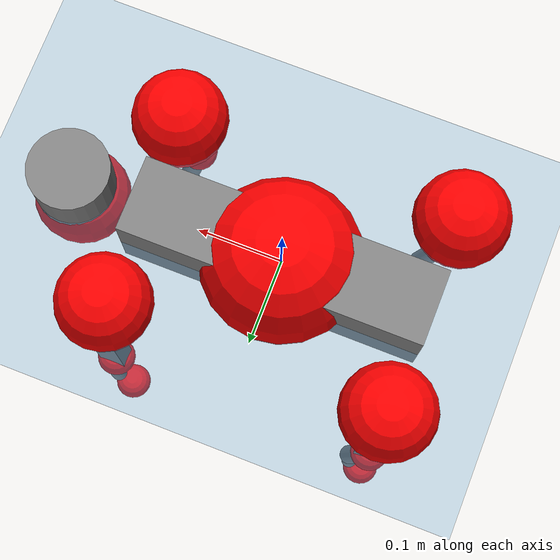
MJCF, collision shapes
<mujoco model="go2">
  <compiler angle="radian" assetdir="assets" balanceinertia="true" inertiafromgeom="false"/>

  <option timestep="0.005" density="1.2" viscosity="2e-05"/>

  <size nkey="1"/>

  <visual>
    <quality shadowsize="8192"/>
    <map shadowclip="0.5"/>
  </visual>

  <default>
    <default class="/">
      <geom contype="0" conaffinity="0" group="1" solref="-1000 -80"/>
      <site size="0.01 0.005 0.005" group="5"/>
      <general forcelimited="true" biastype="affine" gainprm="20" biasprm="0 -20 -0.5"/>
      <default class="go2">
        <joint armature="0.01" damping="0.01" frictionloss="0.2"/>
        <geom condim="1" margin="0.001"/>
        <default class="visual">
          <geom type="mesh" group="2"/>
        </default>
        <default class="collision">
          <geom group="3"/>
          <default class="foot">
            <geom size="0.022 0 0" condim="6" priority="1" friction="0.8 0.02 0.01" solimp="0.015 1 0.022"/>
          </default>
        </default>
        <default class="reward_collision_sphere">
          <geom group="5" rgba="1 0 0 1"/>
        </default>
      </default>
    </default>
  </default>

  <asset>
    <texture type="skybox" colorspace="auto" name="//unnamed_texture_0" builtin="gradient" rgb1="0.95 0.95 0.95" rgb2="0.95 0.95 0.95" width="100" height="600"/>
    <texture type="2d" colorspace="auto" name="texplane" builtin="checker" rgb1="0.345 0.575 0.748" rgb2="0.345 0.575 0.748" markrgb="1 1 1" width="512" height="512"/>
    <material name="MatPlane" class="/" texture="texplane" texuniform="true" texrepeat="2 2" specular="0.9"/>
    <material name="metal" class="/" rgba="0.9 0.95 0.95 1"/>
    <material name="black" class="/" rgba="0 0 0 1"/>
    <material name="white" class="/"/>
    <material name="gray" class="/" rgba="0.671705 0.692426 0.77427 1"/>
    <mesh name="base_0" class="/" file="base_0.obj"/>
    <mesh name="base_1" class="/" file="base_1.obj"/>
    <mesh name="base_2" class="/" file="base_2.obj"/>
    <mesh name="base_3" class="/" file="base_3.obj"/>
    <mesh name="base_4" class="/" file="base_4.obj"/>
    <mesh name="hip_0" class="/" file="hip_0.obj"/>
    <mesh name="hip_1" class="/" file="hip_1.obj"/>
    <mesh name="thigh_0" class="/" file="thigh_0.obj"/>
    <mesh name="thigh_1" class="/" file="thigh_1.obj"/>
    <mesh name="thigh_mirror_0" class="/" file="thigh_mirror_0.obj"/>
    <mesh name="thigh_mirror_1" class="/" file="thigh_mirror_1.obj"/>
    <mesh name="calf_0" class="/" file="calf_0.obj"/>
    <mesh name="calf_1" class="/" file="calf_1.obj"/>
    <mesh name="calf_mirror_0" class="/" file="calf_mirror_0.obj"/>
    <mesh name="calf_mirror_1" class="/" file="calf_mirror_1.obj"/>
    <mesh name="foot" class="/" file="foot.obj"/>
  </asset>

  <worldbody>
    <geom name="floor" class="/" size="100 100 0.125" type="plane" group="0" material="MatPlane"/>
    <light name="toplight_shadow" class="/" pos="0 0 5" dir="0.0990148 0.0990148 -0.990148" type="directional" ambient="0.04 0.04 0.04" diffuse="0.55 0.55 0.55" specular="0.12 0.12 0.12"/>
    <light name="toplight_fill" class="/" pos="0 0 5" dir="0.0990148 0.0990148 -0.990148" type="directional" castshadow="false" ambient="0.04 0.04 0.04" diffuse="0.3 0.3 0.3" specular="0.08 0.08 0.08"/>
    <body name="trunk" childclass="go2" pos="-0.000936073 0.000211806 0.00184948" quat="0.999999 -0.000740227 -0.000206066 -0.000963808">
      <inertial pos="0.0182334 -0.00225329 -0.00742622" quat="-0.00276575 0.713057 -0.000904936 0.7011" mass="5.84744" diaginertia="0.0584702 0.101981 0.0174034"/>
      <joint name="//unnamed_joint_0" type="free" armature="0" damping="0" frictionloss="0"/>
      <geom name="//unnamed_geom_1" class="visual" material="black" mesh="base_0"/>
      <geom name="//unnamed_geom_2" class="visual" material="black" mesh="base_1"/>
      <geom name="//unnamed_geom_3" class="visual" material="black" mesh="base_2"/>
      <geom name="//unnamed_geom_4" class="visual" material="white" mesh="base_3"/>
      <geom name="//unnamed_geom_5" class="visual" material="gray" mesh="base_4"/>
      <geom name="trunk_1" class="collision" size="0.177695 0.0441639 0.0538469" type="box"/>
      <geom name="trunk_2" class="collision" size="0.0472341 0.0425107" pos="0.252907 0 0.00936447" type="cylinder"/>
      <geom name="trunk_3" class="collision" size="0.0444001" pos="0.260006 0 -0.0561868"/>
      <geom name="//unnamed_geom_9" class="reward_collision_sphere" size="0.0944682"/>
      <geom name="//unnamed_geom_10" class="reward_collision_sphere" size="0.0566809" pos="0.24847 0 -0.0421401"/>
      <site name="imu" pos="-0.0152249 -0.000454722 0.0320185" size="0.00944682"/>
      <camera name="track" pos="0 -2.02041 0" quat="0.707107 0.707107 0 0" mode="trackcom"/>
      <camera name="ego_camera" pos="0.276867 0 0.0421401" quat="-0.5 -0.5 0.5 0.5"/>
      <body name="FL_hip" pos="0.168503 0.0444892 -0.0026395" quat="1 0.000174469 -2.79419e-05 0.000147084">
        <inertial pos="-0.00468766 -0.000489614 0.000811403" quat="0.4972 0.499864 0.504207 0.498701" mass="0.588338" diaginertia="0.000485009 0.000605676 0.00034391"/>
        <joint name="FL_hip_joint" pos="0 0 0" axis="0.999864 0.0115855 0.011778" range="-1.05121 1.09407" armature="0.00909331" damping="0.0211742" frictionloss="0.162494"/>
        <geom name="//unnamed_geom_11" class="visual" material="metal" mesh="hip_0"/>
        <geom name="//unnamed_geom_12" class="visual" material="gray" mesh="hip_1"/>
        <geom name="//unnamed_geom_13" class="collision" size="0.0434554 0.0188936" pos="0 0.0808165 0" quat="0.707107 0.707107 0 0" type="cylinder"/>
        <geom name="//unnamed_geom_14" class="reward_collision_sphere" size="0.0566809" pos="0 0.0707145 0"/>
        <body name="FL_thigh" pos="-0.00345525 0.0971749 0.00282005" quat="1 0.000351685 -0.000604051 0.000454407">
          <inertial pos="-0.00440908 -0.0223759 -0.0278288" quat="0.83628 0.0856365 -0.0171933 0.5413" mass="0.949706" diaginertia="0.003328 0.00616431 0.000652346"/>
          <joint name="FL_thigh_joint" pos="0 0 0" axis="-0.00800333 0.999967 -0.00110443" stiffness="0.00761547" range="-1.53028 3.54709" armature="0.00898992" damping="0.0173835" frictionloss="0.16247"/>
          <geom name="//unnamed_geom_15" class="visual" material="metal" mesh="thigh_0"/>
          <geom name="//unnamed_geom_16" class="visual" material="gray" mesh="thigh_1"/>
          <geom name="//unnamed_geom_17" class="collision" size="0.100609 0.0115724 0.0160596" pos="0 0 -0.0997316" quat="0.707107 0 0.707107 0" type="box"/>
          <body name="FL_calf" pos="-2.94928e-06 0.00141112 -0.200092" quat="1 -0.00010008 -0.000128534 -3.60828e-05">
            <inertial pos="0.00530737 -0.000125471 -0.134739" quat="0.710955 0.00183899 -0.00461185 0.70322" mass="0.205077" diaginertia="0.000797798 0.00152336 3.84752e-05"/>
            <joint name="FL_calf_joint" pos="0 0 0" axis="-0.00843982 0.999887 0.0124555" range="-2.66654 -0.835736" armature="0.0102056" damping="0" frictionloss="0.190125"/>
            <geom name="//unnamed_geom_18" class="visual" material="gray" mesh="calf_0"/>
            <geom name="//unnamed_geom_19" class="visual" material="black" mesh="calf_1"/>
            <geom name="FL_calf0" class="collision" size="0.0113362 0.0566809" pos="0.00709914 0 -0.0561868" quat="0.994493 0 -0.104807 0" type="cylinder"/>
            <geom name="//unnamed_geom_21" class="collision" size="0.0103915 0.0307022" pos="0.0177479 0 -0.138594" quat="0.999688 0 0.0249974 0" type="cylinder"/>
            <geom name="//unnamed_geom_22" class="visual" pos="0 0 -0.199463" quat="1 0 0 0" material="black" mesh="foot"/>
            <geom name="FL_foot" class="foot" size="0.0158533" pos="-0.00177479 0 -0.199463"/>
            <geom name="//unnamed_geom_24" class="reward_collision_sphere" size="0.0236171"/>
            <geom name="//unnamed_geom_25" class="reward_collision_sphere" size="0.0236171" pos="-0.00177479 0 -0.199463"/>
            <site name="FL_foot" class="foot" pos="-0.00177479 0 -0.199463" size="0.00944682"/>
          </body>
        </body>
      </body>
      <body name="FR_hip" pos="0.170441 -0.0447165 -0.00141156" quat="1 -2.64883e-05 -9.9392e-05 1.89649e-05">
        <inertial pos="-0.00745767 -0.00198101 -0.00322934" quat="0.49503 0.506825 0.498686 0.499386" mass="0.577168" diaginertia="0.000469964 0.000637365 0.000333227"/>
        <joint name="FR_hip_joint" pos="0 0 0" axis="0.999933 0.00538201 0.0102187" stiffness="0.00764452" range="-1.05307 1.03624" armature="0.0096914" damping="0" frictionloss="0.20807"/>
        <geom name="//unnamed_geom_26" class="visual" pos="0 6.42564e-10 2.75609e-08" quat="4.63268e-05 1 0 0" material="metal" mesh="hip_0"/>
        <geom name="//unnamed_geom_27" class="visual" pos="0 1.04167e-09 -6.81686e-08" quat="4.63268e-05 1 0 0" material="gray" mesh="hip_1"/>
        <geom name="//unnamed_geom_28" class="collision" size="0.0434554 0.0188936" pos="0 -0.0808165 0" quat="0.707107 0.707107 0 0" type="cylinder"/>
        <geom name="//unnamed_geom_29" class="reward_collision_sphere" size="0.0566809" pos="0 -0.0707145 0"/>
        <body name="FR_thigh" pos="0.00296481 -0.0991868 -0.00133119" quat="1 -0.000907415 0.000389957 6.69084e-05">
          <inertial pos="-0.00211006 0.0211626 -0.0333697" quat="0.550039 -0.0196379 0.0987898 0.829043" mass="1.00101" diaginertia="0.0031559 0.00596661 0.000643974"/>
          <joint name="FR_thigh_joint" pos="0 0 0" axis="-0.00315359 -0.999993 0.00215475" range="-3.45496 1.5626" armature="0.0082363" damping="0.0198331" frictionloss="0.211181"/>
          <geom name="//unnamed_geom_30" class="visual" material="metal" mesh="thigh_mirror_0"/>
          <geom name="//unnamed_geom_31" class="visual" material="gray" mesh="thigh_mirror_1"/>
          <geom name="//unnamed_geom_32" class="collision" size="0.100609 0.0115724 0.0160596" pos="0 0 -0.0997316" quat="0.707107 0 0.707107 0" type="box"/>
          <body name="FR_calf" pos="-0.00294006 -0.00147266 -0.200386" quat="0.999999 0.00117485 0.000249826 0.000762915">
            <inertial pos="0.0029378 0.000694704 -0.13297" quat="0.702128 -0.000126443 0.00183631 0.712048" mass="0.217276" diaginertia="0.000869904 0.00153846 3.97281e-05"/>
            <joint name="FR_calf_joint" pos="0 0 0" axis="-0.00478438 -0.999965 -0.00683416" range="0.810595 2.66356" armature="0.0107284" damping="0.0143241" frictionloss="0.212485"/>
            <geom name="//unnamed_geom_33" class="visual" material="gray" mesh="calf_mirror_0"/>
            <geom name="//unnamed_geom_34" class="visual" material="black" mesh="calf_mirror_1"/>
            <geom name="FR_calf0" class="collision" size="0.0122809 0.0566809" pos="0.00887393 0 -0.0561868" quat="0.995004 0 -0.0998334 0" type="cylinder"/>
            <geom name="//unnamed_geom_36" class="collision" size="0.0103915 0.0307022" pos="0.0177479 0 -0.138594" quat="0.999688 0 0.0249974 0" type="cylinder"/>
            <geom name="//unnamed_geom_37" class="visual" pos="0 0 -0.199463" quat="1 0 0 0" material="black" mesh="foot"/>
            <geom name="FR_foot" class="foot" size="0.0201829" pos="-0.00177479 0 -0.199463"/>
            <geom name="//unnamed_geom_39" class="reward_collision_sphere" size="0.0236171"/>
            <geom name="//unnamed_geom_40" class="reward_collision_sphere" size="0.0236171" pos="-0.00177479 0 -0.199463"/>
            <site name="FR_foot" class="foot" pos="-0.00177479 0 -0.199463" size="0.00944682"/>
          </body>
        </body>
      </body>
      <body name="RL_hip" pos="-0.169594 0.0444949 -0.00180397" quat="1 -0.000391195 3.60208e-05 0.000293222">
        <inertial pos="0.00497027 0.00509354 0.000243932" quat="0.507217 0.488441 0.504176 0.499962" mass="0.579867" diaginertia="0.000495248 0.000633447 0.000339097"/>
        <joint name="RL_hip_joint" pos="0 0 0" axis="-0.999999 -0.00126758 -0.00036905" range="-1.05249 1.07872" armature="0.0100034" damping="0.00367827" frictionloss="0.188152"/>
        <geom name="//unnamed_geom_41" class="visual" pos="4.27341e-10 0 8.37686e-08" quat="4.63268e-05 0 1 0" material="metal" mesh="hip_0"/>
        <geom name="//unnamed_geom_42" class="visual" pos="6.92771e-10 0 7.42909e-08" quat="4.63268e-05 0 1 0" material="gray" mesh="hip_1"/>
        <geom name="//unnamed_geom_43" class="collision" size="0.0434554 0.0188936" pos="0 0.0808165 0" quat="0.707107 0.707107 0 0" type="cylinder"/>
        <geom name="//unnamed_geom_44" class="reward_collision_sphere" size="0.0566809" pos="0 0.0707145 0"/>
        <body name="RL_thigh" pos="0.000164612 0.094014 0.00174476" quat="0.999999 0.000174581 0.000775419 0.000676683">
          <inertial pos="-0.00361455 -0.0203292 -0.0317914" quat="0.829997 0.0836601 -0.019257 0.551122" mass="0.911259" diaginertia="0.00313373 0.00613874 0.000626496"/>
          <joint name="RL_thigh_joint" pos="0 0 0" axis="0.000507837 1 -0.000582861" stiffness="0.00640209" range="-0.574935 4.48219" armature="0.00952658" damping="0" frictionloss="0.190914"/>
          <geom name="//unnamed_geom_45" class="visual" material="metal" mesh="thigh_0"/>
          <geom name="//unnamed_geom_46" class="visual" material="gray" mesh="thigh_1"/>
          <geom name="//unnamed_geom_47" class="collision" size="0.100609 0.0115724 0.0160596" pos="0 0 -0.0997316" quat="0.707107 0 0.707107 0" type="box"/>
          <body name="RL_calf" pos="-0.00212486 0.00134469 -0.201689" quat="1 -0.000111821 -8.33074e-05 -1.64208e-05">
            <inertial pos="0.00815216 0.0013072 -0.134177" quat="0.714757 0.0114031 0.00382179 0.69927" mass="0.204828" diaginertia="0.000793735 0.00158458 3.90946e-05"/>
            <joint name="RL_calf_joint" pos="0 0 0" axis="-7.87344e-05 1 -4.68697e-05" stiffness="0.011328" range="-2.68074 -0.890703" armature="0.0101599" damping="0.0144" frictionloss="0.167229"/>
            <geom name="//unnamed_geom_48" class="visual" material="gray" mesh="calf_0"/>
            <geom name="//unnamed_geom_49" class="visual" material="black" mesh="calf_1"/>
            <geom name="RL_calf0" class="collision" size="0.0122809 0.0566809" pos="0.00887393 0 -0.0561868" quat="0.995004 0 -0.0998334 0" type="cylinder"/>
            <geom name="//unnamed_geom_51" class="collision" size="0.0103915 0.0307022" pos="0.0177479 0 -0.138594" quat="0.999688 0 0.0249974 0" type="cylinder"/>
            <geom name="//unnamed_geom_52" class="visual" pos="0 0 -0.199463" quat="1 0 0 0" material="black" mesh="foot"/>
            <geom name="RL_foot" class="foot" size="0.0191605" pos="-0.00177479 0 -0.199463"/>
            <geom name="//unnamed_geom_54" class="reward_collision_sphere" size="0.0236171"/>
            <geom name="//unnamed_geom_55" class="reward_collision_sphere" size="0.0236171" pos="-0.00177479 0 -0.199463"/>
            <site name="RL_foot" class="foot" pos="-0.00177479 0 -0.199463" size="0.00944682"/>
          </body>
        </body>
      </body>
      <body name="RR_hip" pos="-0.171247 -0.0480115 0.00315664" quat="1 0.00011353 5.50487e-07 6.22343e-05">
        <inertial pos="0.00196887 0.000902503 -0.0014027" quat="0.499201 0.497524 0.49807 0.505168" mass="0.583902" diaginertia="0.000483378 0.000623532 0.000344025"/>
        <joint name="RR_hip_joint" pos="0 0 0" axis="-0.999967 0.0073948 0.00325256" range="-1.0843 1.10156" armature="0.00837538" damping="0" frictionloss="0.188206"/>
        <geom name="//unnamed_geom_56" class="visual" pos="-4.23089e-10 6.42564e-10 5.62078e-08" quat="2.14617e-09 4.63268e-05 4.63268e-05 -1" material="metal" mesh="hip_0"/>
        <geom name="//unnamed_geom_57" class="visual" pos="-7.03287e-10 1.04167e-09 1.42459e-07" quat="2.14617e-09 4.63268e-05 4.63268e-05 -1" material="gray" mesh="hip_1"/>
        <geom name="//unnamed_geom_58" class="collision" size="0.0434554 0.0188936" pos="0 -0.0808165 0" quat="0.707107 0.707107 0 0" type="cylinder"/>
        <geom name="//unnamed_geom_59" class="reward_collision_sphere" size="0.0566809" pos="0 -0.0707145 0"/>
        <body name="RR_thigh" pos="0.00104069 -0.0946872 -0.000762118" quat="1 -0.000441555 -0.000685086 -0.000420577">
          <inertial pos="-0.00328144 0.0254105 -0.0298835" quat="0.551252 -0.0200071 0.0852893 0.829727" mass="0.905967" diaginertia="0.00305503 0.00600412 0.000615671"/>
          <joint name="RR_thigh_joint" pos="0 0 0" axis="-0.00533217 -0.999979 -0.00368985" range="-4.48092 0.49549" armature="0.0094907" damping="0.0238054" frictionloss="0.183999"/>
          <geom name="//unnamed_geom_60" class="visual" material="metal" mesh="thigh_mirror_0"/>
          <geom name="//unnamed_geom_61" class="visual" material="gray" mesh="thigh_mirror_1"/>
          <geom name="//unnamed_geom_62" class="collision" size="0.100609 0.0115724 0.0160596" pos="0 0 -0.0997316" quat="0.707107 0 0.707107 0" type="box"/>
          <body name="RR_calf" pos="0.00221961 0.00138789 -0.200627" quat="1 0.000513748 0.000285286 0.000344246">
            <inertial pos="0.00782738 -0.00175072 -0.131583" quat="0.70003 -0.00440409 -0.010391 0.714024" mass="0.203383" diaginertia="0.000795992 0.00153888 3.70845e-05"/>
            <joint name="RR_calf_joint" pos="0 0 0" axis="-0.0142942 -0.999898 0.000240911" range="0.845369 2.759" armature="0.00917511" damping="0.0147417" frictionloss="0.211881"/>
            <geom name="//unnamed_geom_63" class="visual" material="gray" mesh="calf_mirror_0"/>
            <geom name="//unnamed_geom_64" class="visual" material="black" mesh="calf_mirror_1"/>
            <geom name="RR_calf0" class="collision" size="0.0122809 0.0566809" pos="0.00887393 0 -0.0561868" quat="0.995004 0 -0.0998334 0" type="cylinder"/>
            <geom name="//unnamed_geom_66" class="collision" size="0.0103915 0.0307022" pos="0.0177479 0 -0.138594" quat="0.999688 0 0.0249974 0" type="cylinder"/>
            <geom name="//unnamed_geom_67" class="visual" pos="0 0 -0.199463" quat="1 0 0 0" material="black" mesh="foot"/>
            <geom name="RR_foot" class="foot" size="0.0190224" pos="-0.00177479 0 -0.199463"/>
            <geom name="//unnamed_geom_69" class="reward_collision_sphere" size="0.0236171"/>
            <geom name="//unnamed_geom_70" class="reward_collision_sphere" size="0.0236171" pos="-0.00177479 0 -0.199463"/>
            <site name="RR_foot" class="foot" pos="-0.00177479 0 -0.199463" size="0.00944682"/>
          </body>
        </body>
      </body>
    </body>
  </worldbody>

  <contact>
    <pair class="/" geom1="floor" geom2="FL_foot" name="//unnamed_contact_0"/>
    <pair class="/" geom1="floor" geom2="FR_foot" name="//unnamed_contact_1"/>
    <pair class="/" geom1="floor" geom2="RL_foot" name="//unnamed_contact_2"/>
    <pair class="/" geom1="floor" geom2="RR_foot" name="//unnamed_contact_3"/>
  </contact>

  <actuator>
    <general name="FL_hip" class="/" joint="FL_hip_joint" forcerange="-20.2224 20.2224" gainprm="17.6717" biasprm="0 -17.6717 -0.439853"/>
    <general name="FL_thigh" class="/" joint="FL_thigh_joint" forcerange="-21.3862 21.3862" gainprm="17.6717" biasprm="0 -17.6717 -0.439853"/>
    <general name="FL_calf" class="/" joint="FL_calf_joint" forcerange="-39.7806 39.7806" gainprm="17.6717" biasprm="0 -17.6717 -0.439853"/>
    <general name="FR_hip" class="/" joint="FR_hip_joint" forcerange="-22.0213 22.0213" gainprm="17.6717" biasprm="0 -17.6717 -0.439853"/>
    <general name="FR_thigh" class="/" joint="FR_thigh_joint" forcerange="-24.6686 24.6686" gainprm="17.6717" biasprm="0 -17.6717 -0.439853"/>
    <general name="FR_calf" class="/" joint="FR_calf_joint" forcerange="-42.4946 42.4946" gainprm="17.6717" biasprm="0 -17.6717 -0.439853"/>
    <general name="RL_hip" class="/" joint="RL_hip_joint" forcerange="-21.9847 21.9847" gainprm="17.6717" biasprm="0 -17.6717 -0.439853"/>
    <general name="RL_thigh" class="/" joint="RL_thigh_joint" forcerange="-20.1698 20.1698" gainprm="17.6717" biasprm="0 -17.6717 -0.439853"/>
    <general name="RL_calf" class="/" joint="RL_calf_joint" forcerange="-46.1169 46.1169" gainprm="17.6717" biasprm="0 -17.6717 -0.439853"/>
    <general name="RR_hip" class="/" joint="RR_hip_joint" forcerange="-22.8905 22.8905" gainprm="17.6717" biasprm="0 -17.6717 -0.439853"/>
    <general name="RR_thigh" class="/" joint="RR_thigh_joint" forcerange="-24.1446 24.1446" gainprm="17.6717" biasprm="0 -17.6717 -0.439853"/>
    <general name="RR_calf" class="/" joint="RR_calf_joint" forcerange="-44.4373 44.4373" gainprm="17.6717" biasprm="0 -17.6717 -0.439853"/>
  </actuator>

  <sensor>
    <gyro site="imu" name="imu_angular_velocity"/>
    <velocimeter site="imu" name="imu_linear_velocity"/>
    <framelinvel objtype="site" objname="FL_foot" name="FL_foot_global_linear_velocity"/>
    <framelinvel objtype="site" objname="FR_foot" name="FR_foot_global_linear_velocity"/>
    <framelinvel objtype="site" objname="RL_foot" name="RL_foot_global_linear_velocity"/>
    <framelinvel objtype="site" objname="RR_foot" name="RR_foot_global_linear_velocity"/>
  </sensor>

  <keyframe>
    <key name="home" qpos="0 0 0.325 1 0 0 0 0.1 0.8 -1.5 -0.1 -0.8 1.5 -0.1 0.8 -1.5 0.1 -0.8 1.5"/>
  </keyframe>
</mujoco>
